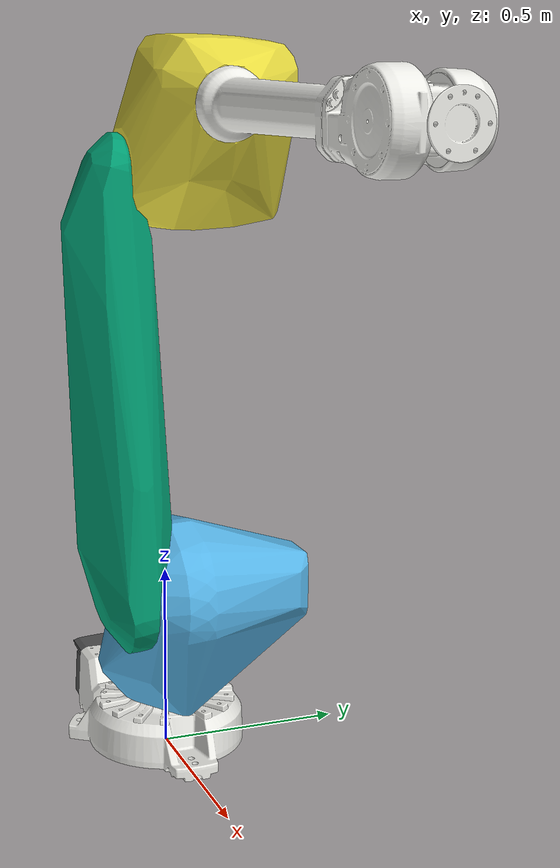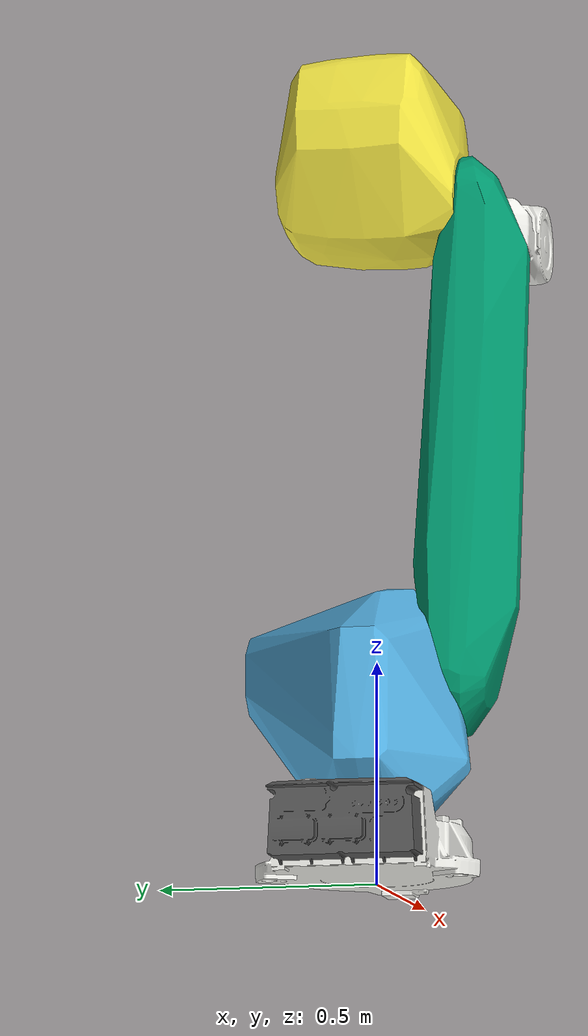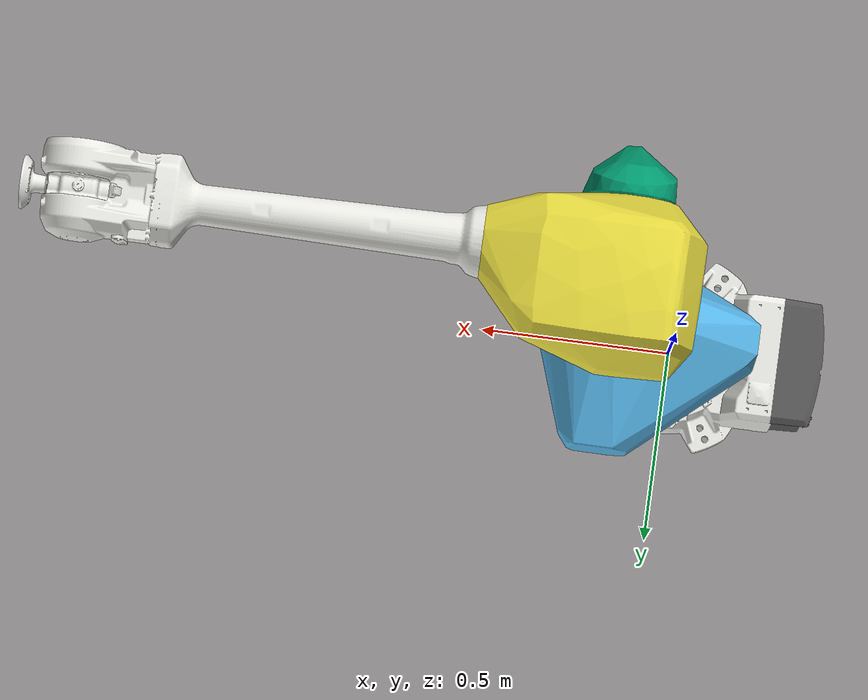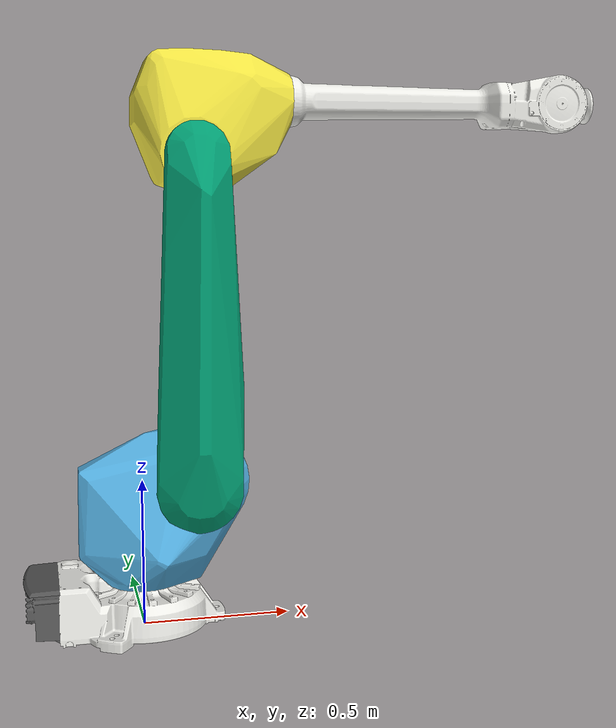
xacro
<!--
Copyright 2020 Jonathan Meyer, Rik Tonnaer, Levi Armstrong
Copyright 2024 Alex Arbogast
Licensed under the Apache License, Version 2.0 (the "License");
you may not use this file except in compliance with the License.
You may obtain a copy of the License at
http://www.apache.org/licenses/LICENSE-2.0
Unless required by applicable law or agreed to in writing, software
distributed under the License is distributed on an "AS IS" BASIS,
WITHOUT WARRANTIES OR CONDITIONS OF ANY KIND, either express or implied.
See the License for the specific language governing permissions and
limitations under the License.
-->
<?xml version="1.0" ?>
<robot name="abb_irb4600_40_255" xmlns:xacro="http://ros.org/wiki/xacro">
  <xacro:arg name="prefix" default=""/>
  <xacro:arg name="use_mock_hardware" default="true"/>
  <xacro:arg name="include_hardware" default="true"/>
  <xacro:arg name="use_fake_hardware" default="true"/>
  <xacro:arg name="rws_ip" default="None"/>
  <xacro:arg name="rws_port" default="80"/>
  <xacro:arg name="configure_via_rws" default="true"/>
  <xacro:arg name="initial_positions_file"
    default="$(find abb_irb4600_description)/config/initial_positions.yaml"/>
  <xacro:arg name="joint_limits_file"
    default="$(find abb_irb4600_description)/config/joint_limits.yaml"/>

  <xacro:include filename="$(find abb_irb4600_description)/urdf/abb_irb4600_40_255_macro.xacro"/>
  <xacro:abb_irb4600_40_255 prefix="$(arg prefix)"
    joint_limits_file="$(arg joint_limits_file)"/>

  <!-- 'world' frame - default pose reference frame -->
  <link name="world" />
  <joint name="world-$(arg prefix)base_link" type="fixed">
    <origin xyz="0 0 0" rpy="0 0 0"/>
    <axis xyz="0 0 1"/>
    <parent link="world"/>
    <child link="$(arg prefix)base_link"/>
  </joint>

  <xacro:if value="$(arg include_hardware)">
    <xacro:include
      filename="$(find abb_irb4600_description)/urdf/abb_irb4600_40_255.ros2_control.xacro"/>
    <xacro:abb_irb4600_ros2_control prefix="$(arg prefix)"
      use_mock_hardware="$(arg use_mock_hardware)"
      initial_positions_file="$(arg initial_positions_file)"
      joint_limits_file="$(arg joint_limits_file)"
      rws_ip="$(arg rws_ip)"
      rws_port="$(arg rws_port)"
      configure_via_rws="$(arg configure_via_rws)"/>

  </xacro:if>
</robot>

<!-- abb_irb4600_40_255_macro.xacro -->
<robot xmlns:xacro="http://ros.org/wiki/xacro">
  <xacro:macro name="abb_irb4600_40_255" params="
    prefix
    joint_limits_file
  ">

    <xacro:property name="joint_limits_parameters" value="${xacro.load_yaml(joint_limits_file)}"/>
    <xacro:property name="joint_limits" value="${joint_limits_parameters['joint_limits']}"/>

    <!-- link list -->
    <link name="${prefix}base_link">
      <visual>
        <geometry>
          <mesh filename="package://abb_irb4600_description/meshes/visual/base_link.dae"/>
        </geometry>
      </visual>
      <collision>
        <geometry>
          <mesh filename="package://abb_irb4600_description/meshes/collision/base_link_collision.stl"/>
        </geometry>
      </collision>
    </link>
    <link name="${prefix}link_1">
      <visual>
        <geometry>
          <mesh filename="package://abb_irb4600_description/meshes/visual/link1.dae"/>
        </geometry>
      </visual>
      <collision>
        <geometry>
          <mesh filename="package://abb_irb4600_description/meshes/collision/link1_collision.stl"/>
        </geometry>
      </collision>
    </link>
    <link name="${prefix}link_2">
      <visual>
        <geometry>
          <mesh filename="package://abb_irb4600_description/meshes/visual/link2.dae"/>
        </geometry>
      </visual>
      <collision>
        <geometry>
          <mesh filename="package://abb_irb4600_description/meshes/collision/link2_collision.stl"/>
        </geometry>
      </collision>
    </link>
    <link name="${prefix}link_3">
      <visual name="visual">
        <geometry>
          <mesh filename="package://abb_irb4600_description/meshes/visual/link3.dae"/>
        </geometry>
      </visual>
      <collision>
        <geometry>
          <mesh filename="package://abb_irb4600_description/meshes/collision/link3_collision.stl"/>
        </geometry>
      </collision>
    </link>
    <link name="${prefix}link_4">
      <visual name="visual">
        <geometry>
          <mesh filename="package://abb_irb4600_description/meshes/visual/link4.dae"/>
        </geometry>
      </visual>
      <collision>
        <geometry>
          <mesh filename="package://abb_irb4600_description/meshes/collision/link4_collision.stl"/>
        </geometry>
      </collision>
    </link>
    <link name="${prefix}link_5">
      <visual name="visual">
        <geometry>
          <mesh filename="package://abb_irb4600_description/meshes/visual/link5.dae"/>
        </geometry>
      </visual>
      <collision>
        <geometry>
          <mesh filename="package://abb_irb4600_description/meshes/collision/link5_collision.stl"/>
        </geometry>
      </collision>
    </link>
    <link name="${prefix}link_6">
      <visual name="visual">
        <geometry>
          <mesh filename="package://abb_irb4600_description/meshes/visual/link6.dae"/>
        </geometry>
      </visual>
      <collision>
        <geometry>
          <mesh filename="package://abb_irb4600_description/meshes/collision/link6_collision.stl"/>
        </geometry>
      </collision>
    </link>
    <!-- end of link list -->

    <!-- joint list -->
    <joint name="${prefix}joint_1" type="revolute">
      <origin xyz="0 0 0.495" rpy="0 0 0"/>
      <axis xyz="0 0 1"/>
      <parent link="${prefix}base_link"/>
      <child link="${prefix}link_1"/>
      <limit
        effort="${joint_limits['joint_1']['max_effort']}"
        lower="${joint_limits['joint_1']['min_position']}"
        upper="${joint_limits['joint_1']['max_position']}"
        velocity="${joint_limits['joint_1']['max_velocity']}"/>
    </joint>
    <joint name="${prefix}joint_2" type="revolute">
      <origin xyz="0.175 0 0" rpy="0 0 0"/>
      <axis xyz="0 1 0"/>
      <parent link="${prefix}link_1"/>
      <child link="${prefix}link_2"/>
      <limit
        effort="${joint_limits['joint_2']['max_effort']}"
        lower="${joint_limits['joint_2']['min_position']}"
        upper="${joint_limits['joint_2']['max_position']}"
        velocity="${joint_limits['joint_2']['max_velocity']}"/>
    </joint>
    <joint name="${prefix}joint_3" type="revolute">
      <origin xyz="0 0 1.095" rpy="0 0 0"/>
      <axis xyz="0 1 0"/>
      <parent link="${prefix}link_2"/>
      <child link="${prefix}link_3"/>
      <limit
        effort="${joint_limits['joint_3']['max_effort']}"
        lower="${joint_limits['joint_3']['min_position']}"
        upper="${joint_limits['joint_3']['max_position']}"
        velocity="${joint_limits['joint_3']['max_velocity']}"/>
    </joint>
    <joint name="${prefix}joint_4" type="revolute">
      <origin xyz="0 0 0.175" rpy="0 0 0"/>
      <axis xyz="1 0 0"/>
      <parent link="${prefix}link_3"/>
      <child link="${prefix}link_4"/>
      <limit
        effort="${joint_limits['joint_4']['max_effort']}"
        lower="${joint_limits['joint_4']['min_position']}"
        upper="${joint_limits['joint_4']['max_position']}"
        velocity="${joint_limits['joint_4']['max_velocity']}"/>
    </joint>
    <joint name="${prefix}joint_5" type="revolute">
      <origin xyz="1.270 0 0" rpy="0 0 0"/>
      <axis xyz="0 1 0"/>
      <parent link="${prefix}link_4"/>
      <child link="${prefix}link_5"/>
      <limit
        effort="${joint_limits['joint_5']['max_effort']}"
        lower="${joint_limits['joint_5']['min_position']}"
        upper="${joint_limits['joint_5']['max_position']}"
        velocity="${joint_limits['joint_5']['max_velocity']}"/>
    </joint>
    <joint name="${prefix}joint_6" type="revolute">
      <origin xyz="0 0 0" rpy="0 0 0"/>
      <axis xyz="1 0 0"/>
      <parent link="${prefix}link_5"/>
      <child link="${prefix}link_6"/>
      <limit
        effort="${joint_limits['joint_6']['max_effort']}"
        lower="${joint_limits['joint_6']['min_position']}"
        upper="${joint_limits['joint_6']['max_position']}"
        velocity="${joint_limits['joint_6']['max_velocity']}"/>
    </joint>
    <!-- end of joint list -->

    <!-- 'base' frame - base_link to ABB World Coordinates transform  -->
    <link name="${prefix}base" />
    <joint name="${prefix}base_link-base" type="fixed">
      <origin xyz="0 0 0" rpy="0 0 0"/>
      <parent link="${prefix}base_link"/>
      <child link="${prefix}base"/>
    </joint>

    <!-- ROS-Industrial 'flange' frame - attachment point for EEF models -->
    <link name="${prefix}flange"/>
    <joint type="fixed" name="${prefix}joint_6-flange">
      <origin xyz="0.135 0 0" rpy="0 0 0"/>
      <parent link="${prefix}link_6"/>
      <child link="${prefix}flange"/>
    </joint>

    <!-- ROS-Industrial 'tool0' frame - all-zeros tool frame -->
    <link name="${prefix}tool0" />
    <joint name="${prefix}link_6-tool0" type="fixed">
      <origin xyz="0 0 0" rpy="0 ${radians(90)} 0" />
      <parent link="${prefix}flange" />
      <child link="${prefix}tool0" />
    </joint>
  </xacro:macro>
</robot>
